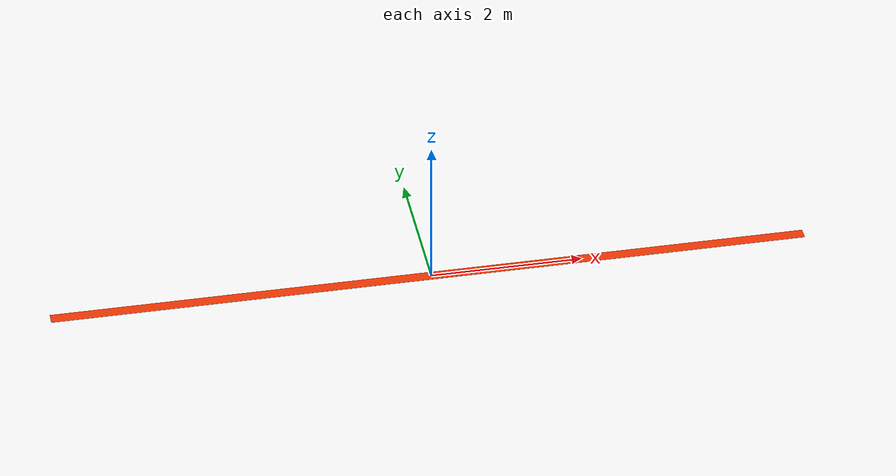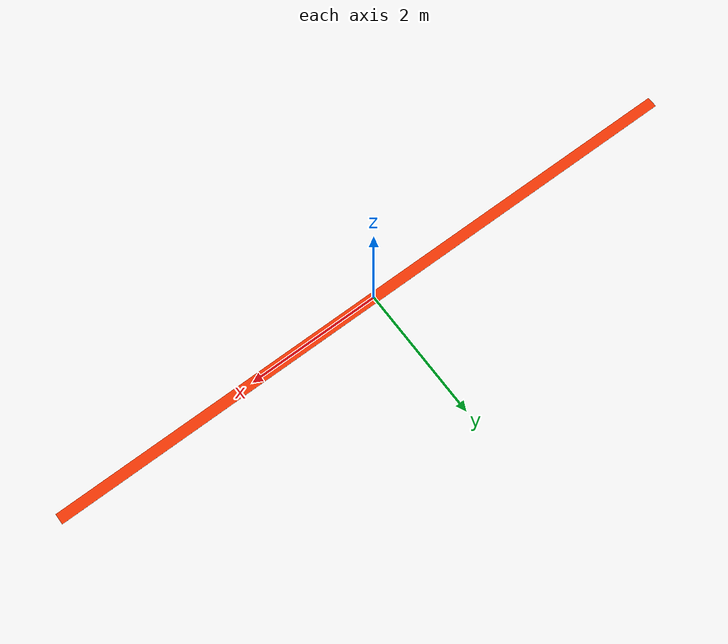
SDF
<?xml version='1.0'?>
<sdf version='1.6'>
  <model name="compliant_platform.sdf">

    <link name='branch'>

      <pose frame=''>0 0 0 0 0 0</pose>
      <collision name='collision'>
        <pose frame=''>0 0 0 0 0 0</pose>
        <geometry>
          <box>
            <!-- 9 0.045 0.002 OG dimensions for thin strips UB-->
            <!-- 5 0.9 0.2 dimensions for large split boxes-->
            <size>10 0.16 0.002</size>
          </box>
        </geometry>
        <surface>
          <friction>
            <ode>
              <mu>0.05</mu>
              <mu2>0.05</mu2>
            </ode>
          </friction>
        </surface>
      </collision>

      <visual name='visual'>
        <pose frame=''>0 0 0 0 0 0</pose>
        <geometry>
          <box>
            <size>10 0.16 0.002</size>
          </box>
        </geometry>
        <material>
          <diffuse>0.9 0.2 0.01</diffuse>
        </material>
      </visual>

    </link>

  </model>
</sdf>
